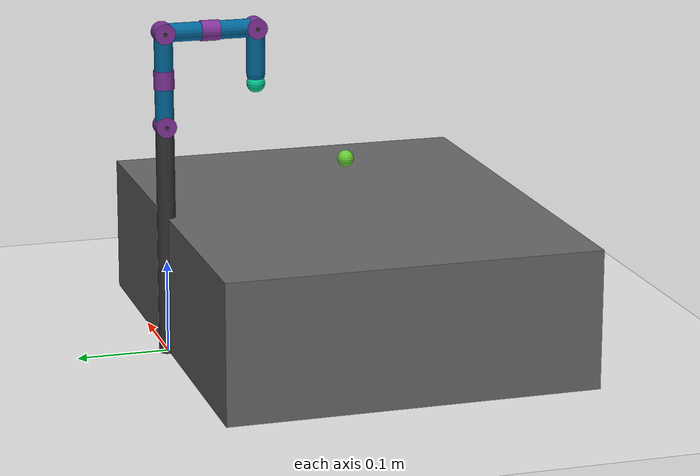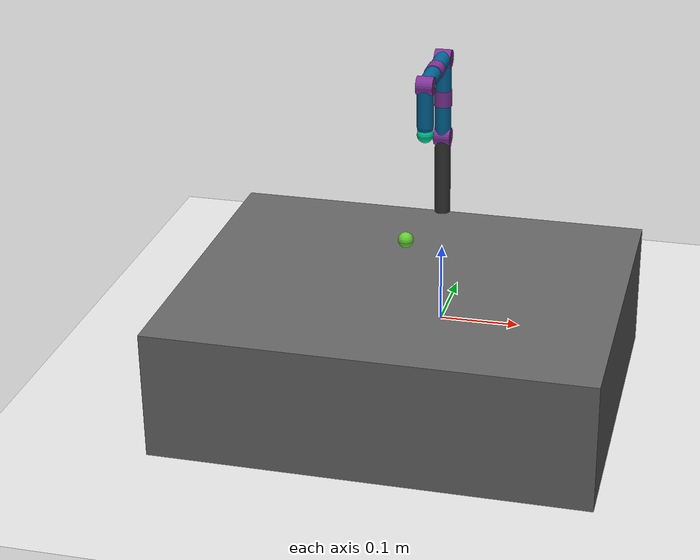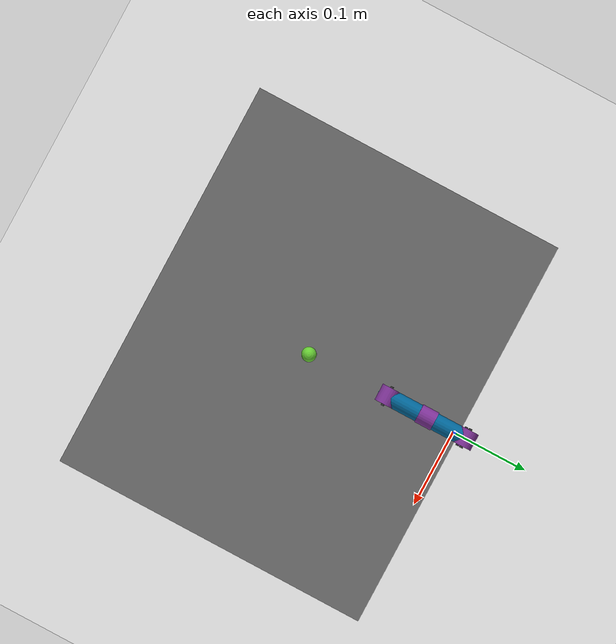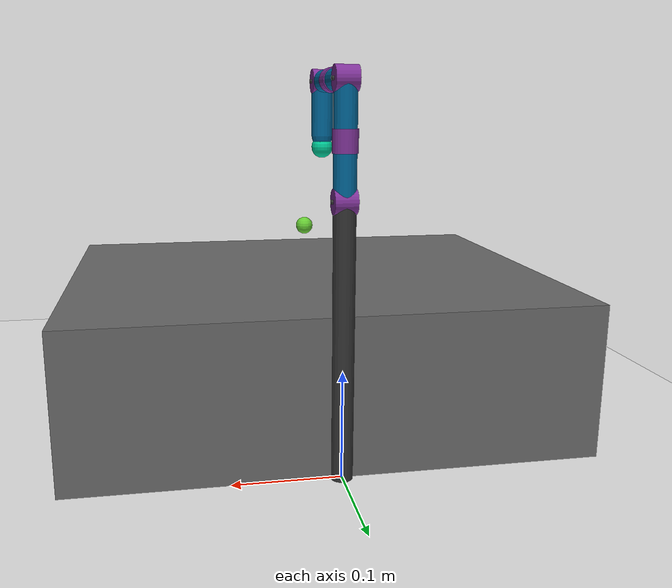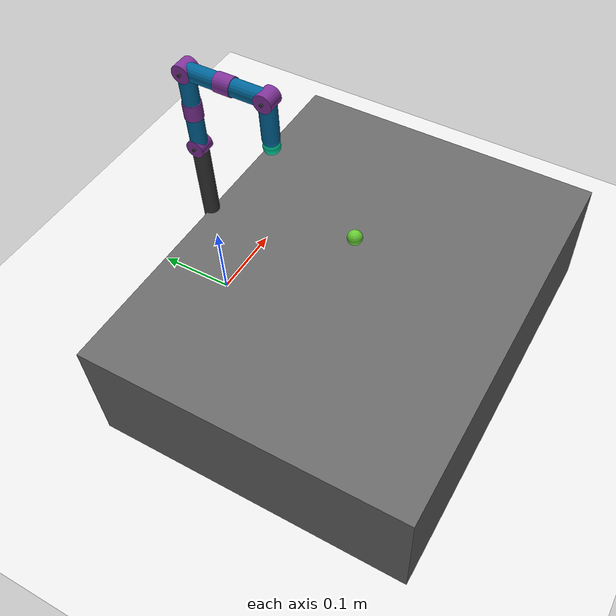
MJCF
<mujoco model="reacher">
	<asset>
		<texture builtin="gradient" height="256" rgb1=".9 .9 1." rgb2=".2 .3 .4" type="skybox" width="256"/>
		<texture name="texplane" builtin="checker" height="512" rgb1=".2 .3 .4" rgb2=".1 0.15 0.2" type="2d" width="512"/>
		<material name="floorplane" reflectance="0.5" texrepeat="1 1" texture="texplane" texuniform="true"/>
	</asset>
	<compiler angle="radian" inertiafromgeom="true"/>
	<default>
		<joint armature="1" damping="1" limited="true"/>
		<geom contype="0" friction="1 0.1 0.1" rgba="0.7 0.7 0 1"/>
	</default>
	<option gravity="0 0 -9.81" integrator="RK4" timestep="0.01"/>
	<worldbody>
		<!-- Arena -->
		<camera mode="fixed" name="robotview" pos="1.0 0 0.4" quat="0.653 0.271 0.271 0.653"/>
		<geom conaffinity="0" contype="0" material="floorplane" name="ground" pos="0 0 0" rgba="0.9 0.9 0.9 1" size="1 1 10" type="plane"/>
		<body name="table" pos="0 -0.2 0.075">
			<geom type="box" contype="1" size="0.25 0.2 0.075" rgba="0.4 0.4 0.4 1"/>
		</body>
		<light diffuse=".8 .8 .8" dir="0 -.15 -1" directional="false" pos="1 1 4.0" specular="0.3 0.3 0.3" castshadow="false"/>
    	<light diffuse=".8 .8 .8" dir="0 -.15 -1" directional="false" pos="-3. -3. 4.0" specular="0.3 0.3 0.3" castshadow="false"/>
		<!-- Arm -->
		<geom conaffinity="2" contype="2" fromto="0 0 0 0 0 0.25" name="root" rgba="0.2 0.2 0.2 1" size=".01" type="capsule"/>
		<body name="body0" pos="0 0 .25">
			<geom fromto="-0.01 0 0 0.01 0 0" name="hinge" rgba="0.5 0.2 0.6 1" size=".011" type="cylinder"/>
			<geom fromto="-0.012 0 0 0.012 0 0" name="hinge0" rgba="0.2 0.2 0.2 1" size=".002" type="cylinder"/>
			<geom fromto="0 0 0 0 0 0.05" name="link0" rgba="0.0 0.4 0.6 1" size=".01" type="capsule"/>
			<joint axis="0 0 1" limited="true" name="joint0" range="-1.57 1.57" pos="0 0 0" type="hinge" damping="0.1"/>
			<joint axis="1 0 0" limited="true" name="joint1" range="-1.57 1.57" pos="0 0 0" type="hinge" damping="0.1"/>
			<body name="body01" pos="0 0 0.05">
				<joint axis="0 0 1" limited="true" name="joint2" pos="0 0 0" range="-1.57 1.57" type="hinge" damping="0.1"/>
				<geom fromto="0 0 -0.01 0 0 0.01" name="hinge00" rgba="0.5 0.2 0.6 1" size=".011" type="cylinder"/>
				<geom fromto="0 0 0 0 0 0.05" name="link01" rgba="0.0 0.4 0.6 1" size=".01" type="capsule"/>
				<geom fromto="-0.01 0 0.05 0.01 0 0.05" name="hinge01" contype="1" rgba="0.5 0.2 0.6 1" size=".011" type="cylinder"/>
				<geom fromto="-0.012 0 0.05 0.012 0 0.05" name="hinge011" rgba="0.2 0.2 0.2 1" size=".002" type="cylinder"/>
				<body name="body1" pos="0 0 0.05">
					<joint axis="1 0 0" limited="true" name="joint3" pos="0 0 0" range="-3.14 0" type="hinge" damping="0.1"/>
					<geom fromto="0 0 0 0 -0.05 0" name="link1" rgba="0.0 0.4 0.6 1" size=".01" type="capsule"/>
					<body name="body11" pos="0 -0.05 0">
						<joint axis="0 1 0" limited="true" name="joint4" pos="0 0 0" range="-1.57 1.57" type="hinge" damping="0.1"/>
						<geom fromto="0 -0.01 0 0 0.01 0" name="hinge10" rgba="0.5 0.2 0.6 1" size=".011" type="cylinder"/>
						<geom fromto="0 0 0 0 -0.05 0" name="link11" rgba="0.0 0.4 0.6 1" size=".01" type="capsule"/>
						<geom fromto="-0.01 -0.05 0 0.01 -0.05 0" name="hinge1" contype="1" rgba="0.5 0.2 0.6 1" size=".011" type="cylinder"/>
						<geom fromto="-0.012 -0.05 0 0.012 -0.05 0" name="hinge11" rgba="0.2 0.2 0.2 1" size=".002" type="cylinder"/>
						<body name="body2" pos="0 -0.05 0">
							<geom fromto="0 0 0 0 0 -0.05" conaffinity="2" contype="2" name="link2" rgba="0.0 0.4 0.6 1" size=".01" type="capsule"/>
							<joint axis="1 0 0" limited="true" name="joint5" pos="0 0 0" range="-4.02 0.78" type="hinge" damping="0.1"/>
							<body name="fingertip" pos="0 0 -0.06">
								<geom conaffinity="1" contype="1" name="fingertip" pos="0 0 0" rgba="0.0 0.8 0.6 1" size=".01" type="sphere"/>
							</body>
						</body>
					</body>
				</body>
			</body>
		</body>
		<!-- Target -->
		<body name="target" pos="0 -0.20 .2">
			<geom conaffinity="0" contype="0" name="target" pos="0 0 0" rgba="0.4 0.8 0.2 1" size=".009" type="sphere"/>
		</body>
	</worldbody>
	<contact>
		<exclude body1="body0" body2="target"/>
	</contact>
	<actuator>
		<motor ctrllimited="true" ctrlrange="-2.0 2.0" gear="1" joint="joint0"/>
		<motor ctrllimited="true" ctrlrange="-3.0 3.0" gear="1" joint="joint1"/>
		<motor ctrllimited="true" ctrlrange="-5.0 5.0" gear="1" joint="joint2"/>
		<motor ctrllimited="true" ctrlrange="-5.0 5.0" gear="1" joint="joint3"/>
		<motor ctrllimited="true" ctrlrange="-5.0 5.0" gear="1" joint="joint4"/>
		<motor ctrllimited="true" ctrlrange="-8.0 8.0" gear="1" joint="joint5"/>
	</actuator>
</mujoco>
